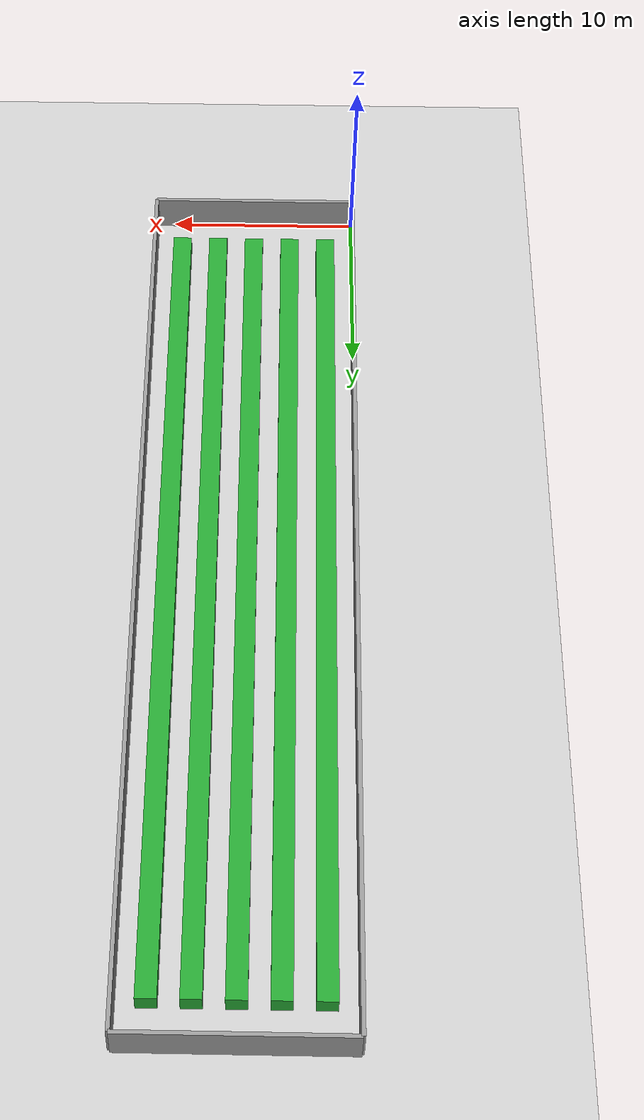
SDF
<?xml version="1.0" ?>
<sdf version="1.6">
  <world name="robotanik_sera">
    <include><uri>model://sun</uri></include>
    <include><uri>model://ground_plane</uri></include>

    <model name="sol_duvar">
      <static>true</static>
      <link name="link">
        <pose>0 25 1 0 0 0</pose>
        <collision name="collision"><geometry><box><size>0.2 50 2</size></box></geometry></collision>
        <visual name="visual">
          <geometry><box><size>0.2 50 2</size></box></geometry>
          <material><script><name>Gazebo/Grey</name></script></material>
        </visual>
      </link>
    </model>

    <model name="sag_duvar">
      <static>true</static>
      <link name="link">
        <pose>11 25 1 0 0 0</pose>
        <collision name="collision"><geometry><box><size>0.2 50 2</size></box></geometry></collision>
        <visual name="visual">
          <geometry><box><size>0.2 50 2</size></box></geometry>
          <material><script><name>Gazebo/Grey</name></script></material>
        </visual>
      </link>
    </model>

    <model name="alt_duvar">
      <static>true</static>
      <link name="link">
        <pose>5.5 0 1 0 0 0</pose>
        <collision name="collision"><geometry><box><size>11 0.2 2</size></box></geometry></collision>
        <visual name="visual">
          <geometry><box><size>11 0.2 2</size></box></geometry>
          <material><script><name>Gazebo/Grey</name></script></material>
        </visual>
      </link>
    </model>

    <model name="ust_duvar">
      <static>true</static>
      <link name="link">
        <pose>5.5 50 1 0 0 0</pose>
        <collision name="collision"><geometry><box><size>11 0.2 2</size></box></geometry></collision>
        <visual name="visual">
          <geometry><box><size>11 0.2 2</size></box></geometry>
          <material><script><name>Gazebo/Grey</name></script></material>
        </visual>
      </link>
    </model>

    <model name="bitki_sirasi_1.5">
      <static>true</static>
      <link name="link">
        <pose>1.5 25 0.5 0 0 0</pose>
        <collision name="collision"><geometry><box><size>1 46 1</size></box></geometry></collision>
        <visual name="visual">
          <geometry><box><size>1 46 1</size></box></geometry>
          <material><script><name>Gazebo/Green</name></script></material>
        </visual>
      </link>
    </model>

    <model name="bitki_sirasi_3.5">
      <static>true</static>
      <link name="link">
        <pose>3.5 25 0.5 0 0 0</pose>
        <collision name="collision"><geometry><box><size>1 46 1</size></box></geometry></collision>
        <visual name="visual">
          <geometry><box><size>1 46 1</size></box></geometry>
          <material><script><name>Gazebo/Green</name></script></material>
        </visual>
      </link>
    </model>

    <model name="bitki_sirasi_5.5">
      <static>true</static>
      <link name="link">
        <pose>5.5 25 0.5 0 0 0</pose>
        <collision name="collision"><geometry><box><size>1 46 1</size></box></geometry></collision>
        <visual name="visual">
          <geometry><box><size>1 46 1</size></box></geometry>
          <material><script><name>Gazebo/Green</name></script></material>
        </visual>
      </link>
    </model>

    <model name="bitki_sirasi_7.5">
      <static>true</static>
      <link name="link">
        <pose>7.5 25 0.5 0 0 0</pose>
        <collision name="collision"><geometry><box><size>1 46 1</size></box></geometry></collision>
        <visual name="visual">
          <geometry><box><size>1 46 1</size></box></geometry>
          <material><script><name>Gazebo/Green</name></script></material>
        </visual>
      </link>
    </model>

    <model name="bitki_sirasi_9.5">
      <static>true</static>
      <link name="link">
        <pose>9.5 25 0.5 0 0 0</pose>
        <collision name="collision"><geometry><box><size>1 46 1</size></box></geometry></collision>
        <visual name="visual">
          <geometry><box><size>1 46 1</size></box></geometry>
          <material><script><name>Gazebo/Green</name></script></material>
        </visual>
      </link>
    </model>

  </world>
</sdf>
